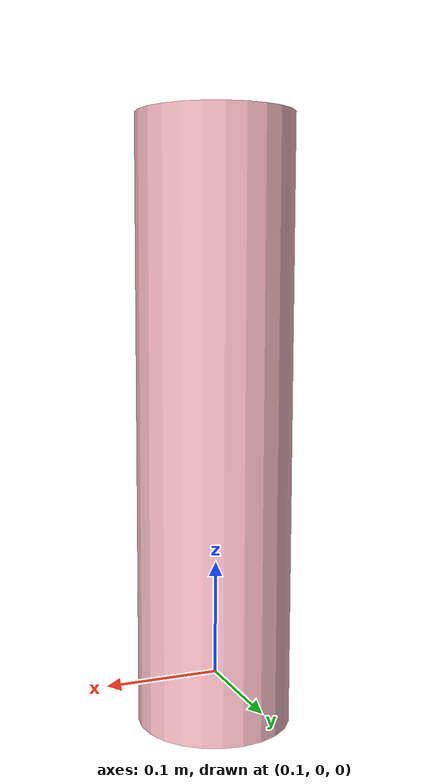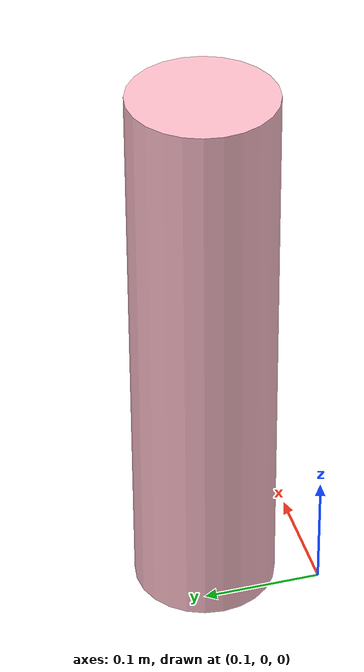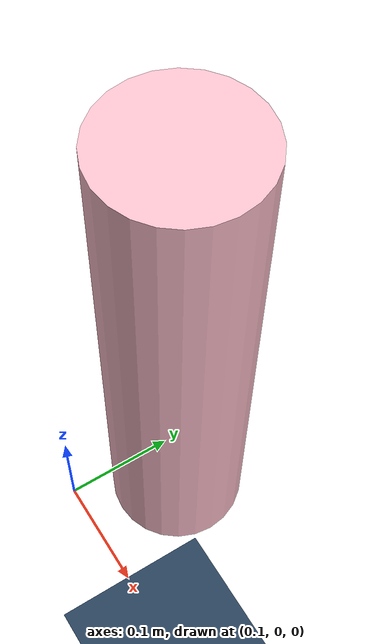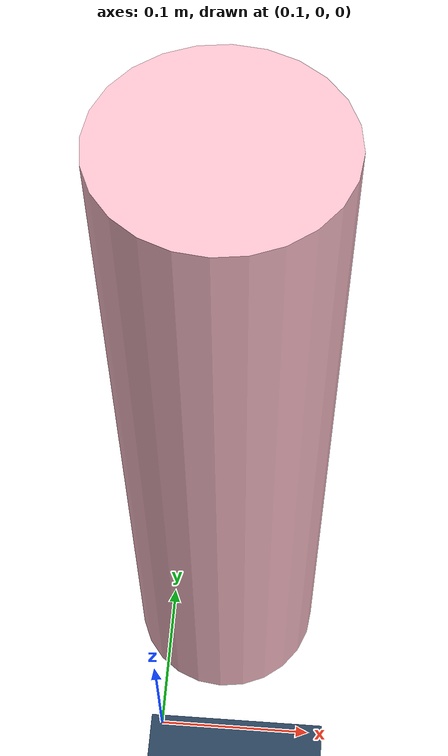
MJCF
<mujoco>
  <option gravity="0 0 -9.81" />
  <compiler angle="radian" />
  <visual>
    <headlight diffuse="0.6 0.6 0.6" ambient="0.1 0.1 0.1" specular="0.9 0.9 0.9"/>
    <rgba haze="0.15 0.25 0.35 1"/>
    <global azimuth="140" elevation="-20"/>
  </visual>
  <asset>
    <texture type="skybox" builtin="gradient" rgb1="0.3 0.5 0.7" rgb2="0 0 0" width="512" height="3072"/>
    <texture type="2d" name="groundplane" builtin="checker" mark="edge" rgb1="0.2 0.3 0.4" rgb2="0.1 0.2 0.3"
      markrgb="0.8 0.8 0.8" width="300" height="300"/>
    <material name="groundplane" texture="groundplane" texuniform="true" texrepeat="5 5" reflectance="0.2"/>
  </asset>
  <worldbody>
    <geom name="floor" pos="0 0 -0.5" size="0 0 0.05" type="plane" material="groundplane"/>
    <body name="cylinder_body" pos="0.1381 0.09 0.2344">
      <joint name="joint0" type="hinge" axis="0 -1 0" pos="0 0 0.5" damping="2" frictionloss="2"/>
      <geom type="cylinder" size="0.06 0.2344" rgba="1 0.75 0.8 1"/>
      <inertial pos="0 0 0" mass="4.57" diaginertia="0.1 0.1 0.1"/>
    </body>
  </worldbody>
  <actuator>
    <motor name="torque0" joint="joint0"  ctrlrange="-10 10" ctrllimited="true" />
  </actuator>
</mujoco>
